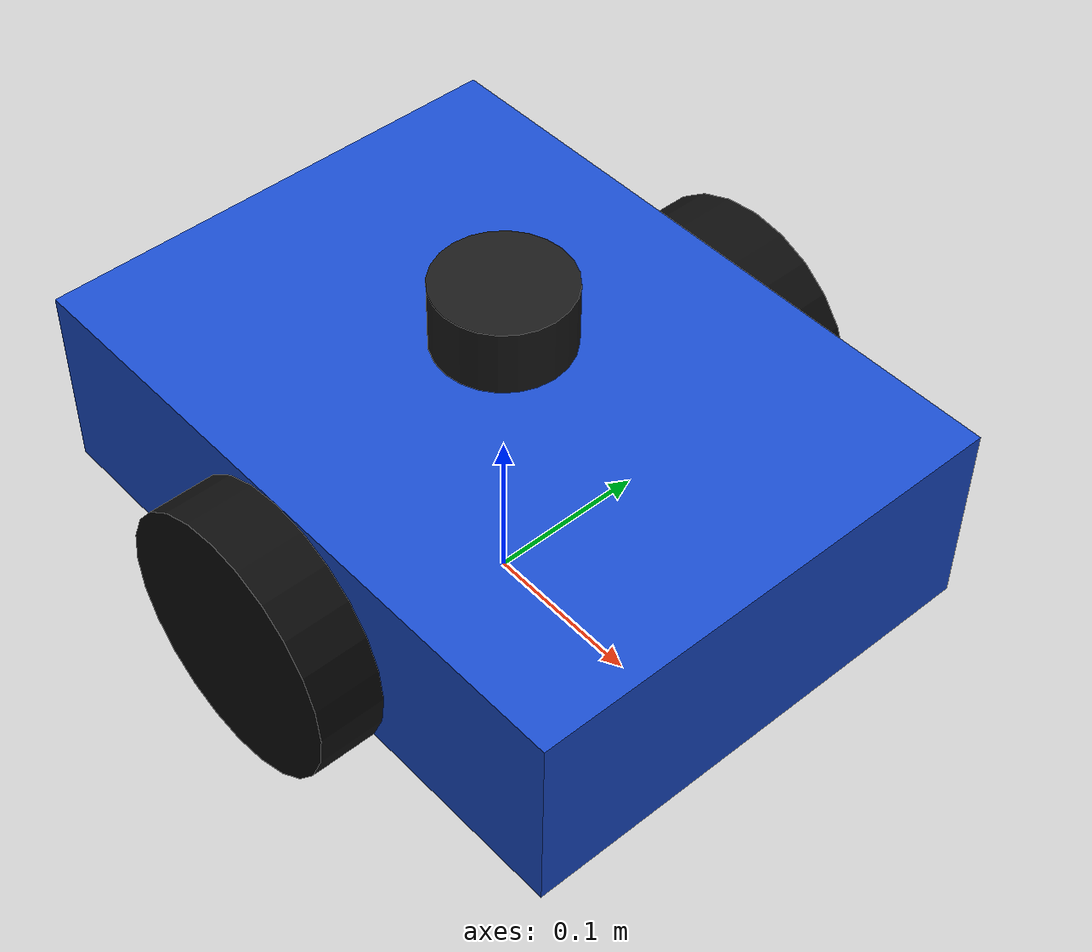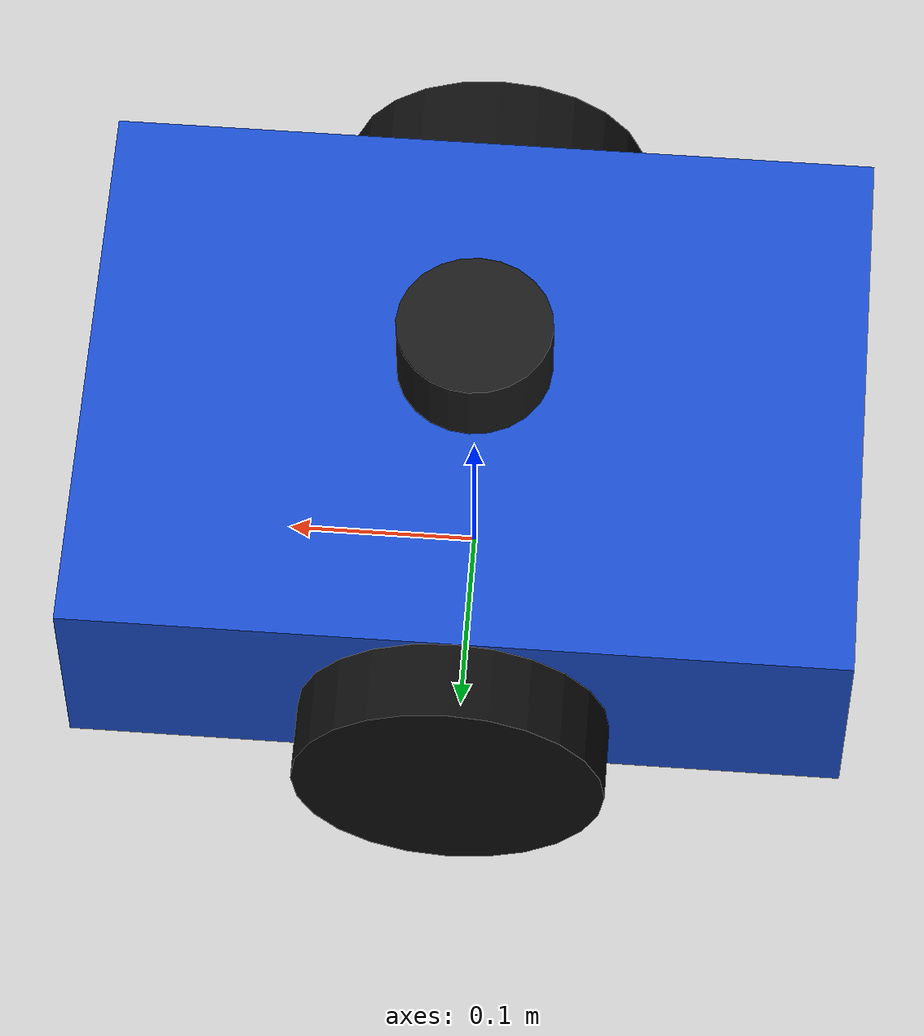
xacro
<?xml version="1.0"?>

<robot xmlns:xacro="http://www.ros.org/wiki/xacro"
       name="my_robot">

  <!-- Robot dimensions          -->

  <xacro:property name="chassis_length" value="0.40"/>
  <xacro:property name="chassis_width"  value="0.30"/>
  <xacro:property name="chassis_height" value="0.12"/>

  <xacro:property name="wheel_radius" value="0.08"/>
  <xacro:property name="wheel_width"  value="0.04"/>

  <!-- Base link                 -->

  <link name="base_link">

    <visual>
      <origin xyz="0 0 0.10" rpy="0 0 0"/>

      <geometry>
        <box size="${chassis_length} ${chassis_width} ${chassis_height}"/>
      </geometry>

      <material name="blue">
        <color rgba="0.1 0.3 0.8 1.0"/>
      </material>
    </visual>

    <collision>
      <origin xyz="0 0 0.10" rpy="0 0 0"/>

      <geometry>
        <box size="${chassis_length} ${chassis_width} ${chassis_height}"/>
      </geometry>
    </collision>

    <inertial>
      <origin xyz="0 0 0.10"/>

      <mass value="5.0"/>

      <inertia
        ixx="0.1"
        ixy="0.0"
        ixz="0.0"
        iyy="0.1"
        iyz="0.0"
        izz="0.1"/>
    </inertial>

  </link>

  <!-- Left wheel                -->

  <link name="left_wheel">

    <visual>
      <origin xyz="0 0 0" rpy="${pi/2} 0 0"/>

      <geometry>
        <cylinder
          radius="${wheel_radius}"
          length="${wheel_width}"/>
      </geometry>

      <material name="black">
        <color rgba="0.05 0.05 0.05 1.0"/>
      </material>
    </visual>

    <collision>
      <origin xyz="0 0 0" rpy="${pi/2} 0 0"/>

      <geometry>
        <cylinder
          radius="${wheel_radius}"
          length="${wheel_width}"/>
      </geometry>
    </collision>

    <inertial>
      <mass value="0.5"/>

      <inertia
        ixx="0.001"
        ixy="0.0"
        ixz="0.0"
        iyy="0.001"
        iyz="0.0"
        izz="0.001"/>
    </inertial>

  </link>

  <!-- Right wheel               -->

  <link name="right_wheel">

    <visual>
      <origin xyz="0 0 0" rpy="${pi/2} 0 0"/>

      <geometry>
        <cylinder
          radius="${wheel_radius}"
          length="${wheel_width}"/>
      </geometry>

      <material name="black">
        <color rgba="0.05 0.05 0.05 1.0"/>
      </material>
    </visual>

    <collision>
      <origin xyz="0 0 0" rpy="${pi/2} 0 0"/>

      <geometry>
        <cylinder
          radius="${wheel_radius}"
          length="${wheel_width}"/>
      </geometry>
    </collision>

    <inertial>
      <mass value="0.5"/>

      <inertia
        ixx="0.001"
        ixy="0.0"
        ixz="0.0"
        iyy="0.001"
        iyz="0.0"
        izz="0.001"/>
    </inertial>

  </link>

  <!-- Left wheel joint          -->

  <joint name="left_wheel_joint"
        type="continuous">

    <parent link="base_link"/>
    <child link="left_wheel"/>

    <origin
      xyz="0 ${chassis_width/2 + wheel_width/2} ${wheel_radius}"
      rpy="0 0 0"/>

    <axis xyz="0 1 0"/>

  </joint>

  <!-- Right wheel joint         -->

  <joint name="right_wheel_joint"
        type="continuous">

    <parent link="base_link"/>
    <child link="right_wheel"/>

    <origin
      xyz="0 -${chassis_width/2 + wheel_width/2} ${wheel_radius}"
      rpy="0 0 0"/>

    <axis xyz="0 1 0"/>

  </joint>

  <!-- Gazebo                   -->

  <gazebo reference="base_link">

    <material>Gazebo/Blue</material>

  </gazebo>

  <gazebo reference="left_wheel">

    <material>Gazebo/Black</material>

  </gazebo>

  <gazebo reference="right_wheel">

    <material>Gazebo/Black</material>

  </gazebo>

  <!-- Differential drive       -->

  <gazebo>

    <plugin
      name="diff_drive"
      filename="libgazebo_ros_diff_drive.so">

      <ros>
        <namespace>/</namespace>
      </ros>

      <update_rate>50</update_rate>

      <left_joint>left_wheel_joint</left_joint>
      <right_joint>right_wheel_joint</right_joint>

      <wheel_separation>${chassis_width + wheel_width}</wheel_separation>
      <wheel_diameter>${2 * wheel_radius}</wheel_diameter>

      <max_wheel_torque>20</max_wheel_torque>
      <max_wheel_acceleration>10</max_wheel_acceleration>

      <command_topic>cmd_vel</command_topic>

      <odometry_topic>odom</odometry_topic>
      <odometry_frame>odom</odometry_frame>

      <robot_base_frame>base_link</robot_base_frame>

      <publish_odom>true</publish_odom>
      <publish_odom_tf>true</publish_odom_tf>

    </plugin>

  </gazebo>
  <!-- LiDAR                     -->

  <link name="lidar_link">
    <visual>
      <geometry>
        <cylinder radius="0.04" length="0.04"/>
      </geometry>
      <material name="lidar_black">
        <color rgba="0.1 0.1 0.1 1.0"/>
      </material>
    </visual>
    <collision>
      <geometry>
        <cylinder radius="0.04" length="0.04"/>
      </geometry>
    </collision>
    <inertial>
      <mass value="0.1"/>
      <inertia ixx="0.0001" ixy="0.0" ixz="0.0"
               iyy="0.0001" iyz="0.0" izz="0.0001"/>
    </inertial>
  </link>

  <joint name="lidar_joint" type="fixed">
    <parent link="base_link"/>
    <child link="lidar_link"/>
    <origin xyz="0.0 0.0 0.20" rpy="0 0 0"/>
  </joint>

  <gazebo reference="lidar_link">
    <material>Gazebo/Black</material>
    <sensor type="ray" name="lidar_sensor">
      <always_on>true</always_on>
      <visualize>true</visualize>
      <update_rate>10</update_rate>
      <ray>
        <scan>
          <horizontal>
            <samples>360</samples>
            <resolution>1</resolution>
            <min_angle>-3.14159</min_angle>
            <max_angle>3.14159</max_angle>
          </horizontal>
        </scan>
        <range>
          <min>0.12</min>
          <max>10.0</max>
          <resolution>0.01</resolution>
        </range>
      </ray>
      <plugin name="lidar_plugin" filename="libgazebo_ros_ray_sensor.so">
        <ros>
          <namespace>/</namespace>
          <remapping>~/out:=scan</remapping>
        </ros>
        <output_type>sensor_msgs/LaserScan</output_type>
        <frame_name>lidar_link</frame_name>
      </plugin>
    </sensor>
  </gazebo>

</robot>
